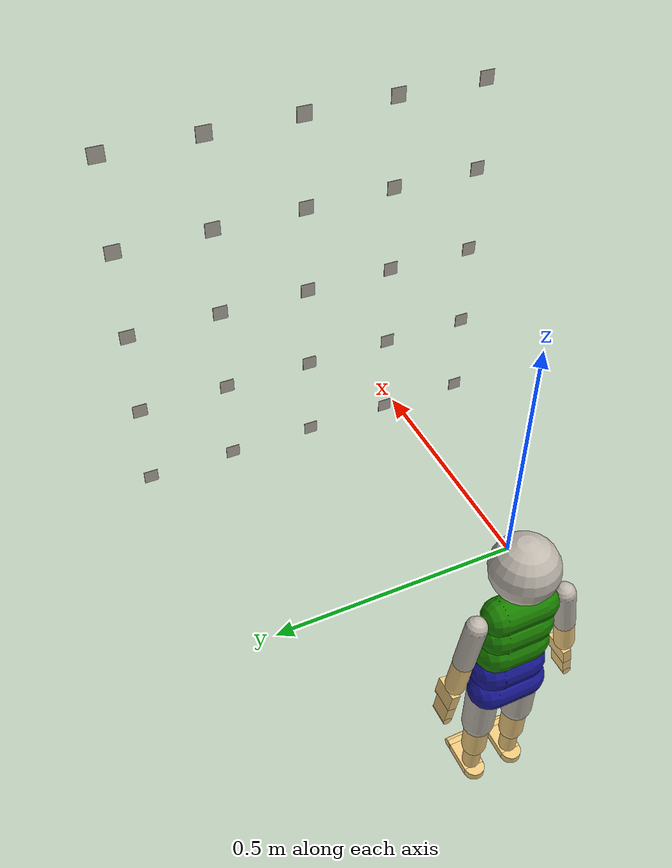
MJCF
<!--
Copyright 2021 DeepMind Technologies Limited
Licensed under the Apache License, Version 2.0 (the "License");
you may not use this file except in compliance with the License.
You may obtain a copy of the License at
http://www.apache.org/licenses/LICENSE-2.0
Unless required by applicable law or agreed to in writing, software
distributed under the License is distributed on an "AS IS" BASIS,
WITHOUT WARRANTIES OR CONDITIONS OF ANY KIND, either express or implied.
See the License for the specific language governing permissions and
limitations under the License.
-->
<mujoco model="MIMo">

    <compiler inertiafromgeom="true" angle="degree"/>

    <option gravity="0 0 0" timestep="0.005" iterations="50" tolerance="1e-10" solver="Newton" jacobian="dense" cone="elliptic" impratio="1.0"/>

    <size nconmax="1000" njmax="5000" nstack="10000000" nuser_cam="3"/>

    <visual>
        <map force="0.1" zfar="30" znear="0.005"/>
        <rgba haze="0.15 0.25 0.35 1"/>
        <quality shadowsize="0"/>
        <global offwidth="800" offheight="800"/>
    </visual>

    <!-- Import everything except the kinematic tree -->
	<include file="saccade_vergence_meta.xml"></include>

    <asset>
        <texture type="skybox" builtin="gradient" rgb1="0.3 0.5 0.7" rgb2="0 0 0" width="512" height="512"/>

        <!--background-->
        <texture name="background" type="2d" file="../../../data/background.png"/>
        <material name="background" texture="background"/>

        <!-- textures-->
        <texture name="texture0" type="cube" filefront="../../../data/texture0.png" rgb1="0 0 0"/>
        <texture name="texture1" type="cube" filefront="../../../data/texture1.png" rgb1="0 0 0"/>
        <texture name="texture2" type="cube" filefront="../../../data/texture2.png" rgb1="0 0 0"/>
        <texture name="texture3" type="cube" filefront="../../../data/texture3.png" rgb1="0 0 0"/>
        <texture name="texture4" type="cube" filefront="../../../data/texture4.png" rgb1="0 0 0"/>
        <texture name="texture5" type="cube" filefront="../../../data/texture5.png" rgb1="0 0 0"/>
        <texture name="texture6" type="cube" filefront="../../../data/texture6.png" rgb1="0 0 0"/>
        <texture name="texture7" type="cube" filefront="../../../data/texture7.png" rgb1="0 0 0"/>
        <texture name="texture8" type="cube" filefront="../../../data/texture8.png" rgb1="0 0 0"/>
        <texture name="texture9" type="cube" filefront="../../../data/texture9.png" rgb1="0 0 0"/>
        <texture name="texture10" type="cube" filefront="../../../data/texture10.png" rgb1="0 0 0"/>
        <texture name="texture11" type="cube" filefront="../../../data/texture11.png" rgb1="0 0 0"/>
        <texture name="texture12" type="cube" filefront="../../../data/texture12.png" rgb1="0 0 0"/>
        <texture name="texture13" type="cube" filefront="../../../data/texture13.png" rgb1="0 0 0"/>
        <texture name="texture14" type="cube" filefront="../../../data/texture14.png" rgb1="0 0 0"/>
        <texture name="texture15" type="cube" filefront="../../../data/texture15.png" rgb1="0 0 0"/>
        <texture name="texture16" type="cube" filefront="../../../data/texture16.png" rgb1="0 0 0"/>
        <texture name="texture17" type="cube" filefront="../../../data/texture17.png" rgb1="0 0 0"/>
        <texture name="texture18" type="cube" filefront="../../../data/texture18.png" rgb1="0 0 0"/>
        <texture name="texture19" type="cube" filefront="../../../data/texture19.png" rgb1="0 0 0"/>
        <texture name="texture20" type="cube" filefront="../../../data/texture20.png" rgb1="0 0 0"/>
        <texture name="texture21" type="cube" filefront="../../../data/texture21.png" rgb1="0 0 0"/>
        <texture name="texture22" type="cube" filefront="../../../data/texture22.png" rgb1="0 0 0"/>
        <texture name="texture23" type="cube" filefront="../../../data/texture23.png" rgb1="0 0 0"/>
        <texture name="texture24" type="cube" filefront="../../../data/texture24.png" rgb1="0 0 0"/>

        <material name="target03" texture="texture0"/>
        <material name="target12" texture="texture1"/>
        <material name="target13" texture="texture2"/>
        <material name="target14" texture="texture3"/>
        <material name="target21" texture="texture4"/>
        <material name="target22" texture="texture5"/>
        <material name="target23" texture="texture6"/>
        <material name="target24" texture="texture7"/>
        <material name="target25" texture="texture8"/>
        <material name="target30" texture="texture9"/>
        <material name="target31" texture="texture10"/>
        <material name="target32" texture="texture11"/>
        <material name="target33" texture="texture12"/>
        <material name="target34" texture="texture13"/>
        <material name="target35" texture="texture14"/>
        <material name="target36" texture="texture15"/>
        <material name="target41" texture="texture16"/>
        <material name="target42" texture="texture17"/>
        <material name="target43" texture="texture18"/>
        <material name="target44" texture="texture19"/>
        <material name="target45" texture="texture20"/>
        <material name="target52" texture="texture21"/>
        <material name="target53" texture="texture22"/>
        <material name="target54" texture="texture23"/>
        <material name="target63" texture="texture24"/>
    </asset>

    <equality>
        <weld body1="head"/>
        <weld body1="upper_body"/>
        <weld body1="lower_body"/>
        <weld body1="right_upper_arm"/>
        <weld body1="right_hand"/>
        <weld body1="left_upper_arm"/>
        <weld body1="left_hand"/>
        <weld body1="left_upper_leg"/>
        <weld body1="left_foot"/>
        <weld body1="right_upper_leg"/>
        <weld body1="right_foot"/>
    </equality>

    <worldbody>

        <light directional="false" diffuse=".4 .4 .4" specular="0 0 0" pos="0 0 10" dir="0 0 -1" castshadow="false"/>
        <light mode="targetbodycom" target="upper_body" directional="false" diffuse=".5 .5 .5" specular="0.3 0.3 0.3" pos="0 0 5.0" dir="0 0 -1"/>
        <light mode="targetbodycom" target="upper_body" directional="false" diffuse=".5 .5 .5" specular="0.3 0.3 0.3" pos="5.0 0 0.5" dir="-1 0 0"/>
        <light mode="targetbodycom" target="upper_body" directional="false" diffuse=".3 .3 .3" specular="0.3 0.3 0.3" pos="0 5 0.5" dir="0 -1 0"/>
        <light mode="targetbodycom" target="upper_body" directional="false" diffuse=".3 .3 .3" specular="0.3 0.3 0.3" pos="0 -5 0.5" dir="0 1 0"/>

        <!-- Camera behind MIMo as an outside observer of the scene -->
        <camera name="observer" mode="fixed" fovy="54" pos="0 0 0" euler="-90 -90 180"/>
        <camera name="observer_side" mode="fixed" fovy="40" pos="-0.5 0.5 0" euler="-90 -60 180"/>

        <!-- The location and orientation of the base model can be set using this body -->
		<body name="mimo_location" pos="-0.07 0 -0.369375" euler="0 0 0">      <!--MIMo positioned such that his eye cameras are at x,z=0-->
			<freejoint/>
			<include file="saccade_vergence_model.xml"></include> <!-- Import the actual model-->
		</body>

        <!-- Background -->

        <!-- Target textures -->

        <body name="target03" mocap="true" pos="1.0 -0.5 -0.5">
			<geom name="target03" type="box" material="target03" size="0.02 0.02 .001" pos="0 0 0" euler="90 -90 0"/>
		</body>

        <body name="target12" mocap="true" pos="1.0 -0.25 -0.5">
			<geom name="target12" type="box" material="target12" size="0.02 0.02 .001" pos="0 0 0" euler="90 -90 0"/>
		</body>

        <body name="target13" mocap="true" pos="1.0 0.0 -0.5">
			<geom name="target13" type="box" material="target13" size="0.02 0.02 .001" pos="0 0 0" euler="90 -90 0"/>
		</body>

        <body name="target14" mocap="true" pos="1.0 0.25 -0.5">
			<geom name="target14" type="box" material="target14" size="0.02 0.02 .001" pos="0 0 0" euler="90 -90 0"/>
		</body>

        <body name="target21" mocap="true" pos="1.0 0.5 -0.5">
			<geom name="target21" type="box" material="target21" size="0.02 0.02 .001" pos="0 0 0" euler="90 -90 0"/>
		</body>

        <body name="target22" mocap="true" pos="1.0 -0.5 -0.25">
			<geom name="target22" type="box" material="target22" size="0.02 0.02 .001" pos="0 0 0" euler="90 -90 0"/>
		</body>

        <body name="target23" mocap="true" pos="1.0 -0.25 -0.25">
			<geom name="target23" type="box" material="target23" size="0.02 0.02 .001" pos="0 0 0" euler="90 -90 0"/>
		</body>

        <body name="target24" mocap="true" pos="1.0 0.0 -0.25">
			<geom name="target24" type="box" material="target24" size="0.02 0.02 .001" pos="0 0 0" euler="90 -90 0"/>
		</body>

        <body name="target25" mocap="true" pos="1.0 0.25 -0.25">
			<geom name="target25" type="box" material="target25" size="0.02 0.02 .001" pos="0 0 0" euler="90 -90 0"/>
		</body>

        <body name="target30" mocap="true" pos="1.0 0.5 -0.25">
			<geom name="target30" type="box" material="target30" size="0.02 0.02 .001" pos="0 0 0" euler="90 -90 0"/>
		</body>

        <body name="target31" mocap="true" pos="1.0 -0.5 0.0">
			<geom name="target31" type="box" material="target31" size="0.02 0.02 .001" pos="0 0 0" euler="90 -90 0"/>
		</body>

        <body name="target32" mocap="true" pos="1.0 -0.25 0.0">
			<geom name="target32" type="box" material="target32" size="0.02 0.02 .001" pos="0 0 0" euler="90 -90 0"/>
		</body>

        <body name="target33" mocap="true" pos="1.0 0.0 0.0">
			<geom name="target33" type="box" material="target33" size="0.02 0.02 .001" pos="0 0 0" euler="90 -90 0"/>
		</body>

        <body name="target34" mocap="true" pos="1.0 0.25 0.0">
			<geom name="target34" type="box" material="target34" size="0.02 0.02 .001" pos="0 0 0" euler="90 -90 0"/>
		</body>

        <body name="target35" mocap="true" pos="1.0 0.5 0.0">
			<geom name="target35" type="box" material="target35" size="0.02 0.02 .001" pos="0 0 0" euler="90 -90 0"/>
		</body>

        <body name="target36" mocap="true" pos="1.0 -0.5 0.25">
			<geom name="target36" type="box" material="target36" size="0.02 0.02 .001" pos="0 0 0" euler="90 -90 0"/>
		</body>

        <body name="target41" mocap="true" pos="1.0 -0.25 0.25">
			<geom name="target41" type="box" material="target41" size="0.02 0.02 .001" pos="0 0 0" euler="90 -90 0"/>
		</body>

        <body name="target42" mocap="true" pos="1.0 0.0 0.25">
			<geom name="target42" type="box" material="target42" size="0.02 0.02 .001" pos="0 0 0" euler="90 -90 0"/>
		</body>

        <body name="target43" mocap="true" pos="1.0 0.25 0.25">
			<geom name="target43" type="box" material="target43" size="0.02 0.02 .001" pos="0 0 0" euler="90 -90 0"/>
		</body>

        <body name="target44" mocap="true" pos="1.0 0.5 0.25">
			<geom name="target44" type="box" material="target44" size="0.02 0.02 .001" pos="0 0 0" euler="90 -90 0"/>
		</body>

        <body name="target45" mocap="true" pos="1.0 -0.5 0.5">
			<geom name="target45" type="box" material="target45" size="0.02 0.02 .001" pos="0 0 0" euler="90 -90 0"/>
		</body>

        <body name="target52" mocap="true" pos="1.0 -0.25 0.5">
			<geom name="target52" type="box" material="target52" size="0.02 0.02 .001" pos="0 0 0" euler="90 -90 0"/>
		</body>

        <body name="target53" mocap="true" pos="1.0 0.0 0.5">
			<geom name="target53" type="box" material="target53" size="0.02 0.02 .001" pos="0 0 0" euler="90 -90 0"/>
		</body>

        <body name="target54" mocap="true" pos="1.0 0.25 0.5">
			<geom name="target54" type="box" material="target54" size="0.02 0.02 .001" pos="0 0 0" euler="90 -90 0"/>
		</body>

        <body name="target63" mocap="true" pos="1.0 0.5 0.5">
			<geom name="target63" type="box" material="target63" size="0.02 0.02 .001" pos="0 0 0" euler="90 -90 0"/>
		</body>

    </worldbody>
</mujoco>

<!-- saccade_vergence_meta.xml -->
<mujoco model="MIMo">

	<default>
		<default class="mimo">
        	<joint limited="true" damping="1" stiffness="1" armature="0.01" solimplimit="0.98 0.99 0.001 .5 1" solreflimit="0.02 1"/>
        	<geom condim="3" material="skin" density="985" friction="1 0.005 0.0002" solimp="0.95 0.99 0.001 0.5 1" solref="0.005 1"/>
        	<motor ctrlrange="-1 1" ctrllimited="true" forcelimited="true"/>
		</default>
    </default>

    <asset>

		<texture name="tex_head_default" type="cube" fileright="tex/head_front.png" fileleft="tex/head_back.png" fileup="tex/head_left.png" filedown="tex/head_right.png" filefront="tex/head_top.png" rgb1="0.95 .8 .5"/>
		<texture name="tex_head_happy" type="cube" fileright="tex/head_front_happy.png" fileleft="tex/head_back.png" fileup="tex/head_left.png" filedown="tex/head_right.png" filefront="tex/head_top.png" rgb1="0.95 .8 .5"/>
		<texture name="tex_head_sad" type="cube" fileright="tex/head_front_sad.png" fileleft="tex/head_back.png" fileup="tex/head_left.png" filedown="tex/head_right.png" filefront="tex/head_top.png" rgb1="0.95 .8 .5"/>
		<texture name="tex_head_surprised" type="cube" fileright="tex/head_front_surprised.png" fileleft="tex/head_back.png" fileup="tex/head_left.png" filedown="tex/head_right.png" filefront="tex/head_top.png" rgb1="0.95 .8 .5"/>
		<texture name="tex_head_angry" type="cube" fileright="tex/head_front_angry.png" fileleft="tex/head_back.png" fileup="tex/head_left.png" filedown="tex/head_right.png" filefront="tex/head_top.png" rgb1="0.95 .8 .5"/>
		<texture name="tex_head_disgusted" type="cube" fileright="tex/head_front_disgusted.png" fileleft="tex/head_back.png" fileup="tex/head_left.png" filedown="tex/head_right.png" filefront="tex/head_top.png" rgb1="0.95 .8 .5"/>
		<texture name="tex_head_scared" type="cube" fileright="tex/head_front_scared.png" fileleft="tex/head_back.png" fileup="tex/head_left.png" filedown="tex/head_right.png" filefront="tex/head_top.png" rgb1="0.95 .8 .5"/>
		<texture name="tex_top_sleeve" type="cube" fileright="tex/sleeve_right.png" fileleft="tex/sleeve_left.png" fileup="tex/sleeve_up.png" filedown="tex/sleeve_down.png" filefront="tex/sleeve_front.png" fileback="tex/sleeve_back.png" rgb1="0.95 .8 .5"/>
		<texture name="tex_pants_leg" type="cube" fileright="tex/leg_right.png" fileleft="tex/leg_left.png" fileup="tex/leg_up.png" filedown="tex/leg_down.png" filefront="tex/leg_front.png" fileback="tex/leg_back.png" rgb1="0.95 .8 .5"/>
		<texture name="tex_eye_left" type="cube" fileright="tex/eye_pupil_left.png" rgb1="1 1 1"/>
		<texture name="tex_eye_right" type="cube" fileright="tex/eye_pupil_right.png" rgb1="1 1 1"/>

		<material name="skin" rgba="0.95 0.8 0.5 1" specular=".15" shininess=".7"/>
		<material name="buttons" rgba=".05 .05 .05 1" specular=".9" shininess=".9"/>
		<material name="head" texture="tex_head_default" texuniform="true" specular=".0" shininess=".0"/>
		<material name="top_up" rgba=".1 .5 0.0 1" specular=".0" shininess=".0"/>
		<material name="top_middle" rgba=".1 .5 0.0 1" specular=".0" shininess=".0"/>
		<material name="top_down" rgba=".1 .5 0.0 1" specular=".0" shininess=".0"/>
		<material name="top_sleeve" texture="tex_top_sleeve" texuniform="true" specular=".0" shininess=".0"/>
		<material name="pants_up" rgba="0.1 0.1 0.6 1" specular=".0" shininess=".0"/>
		<material name="pants_down" rgba="0.1 0.1 0.6 1" specular=".0" shininess=".0"/>
		<material name="pants_leg" texture="tex_pants_leg" texuniform="true" specular=".0" shininess=".0"/>
		<material name="eye_left" texture="tex_eye_left" texuniform="true" specular=".0" shininess=".0"/>
		<material name="eye_right" texture="tex_eye_right" texuniform="true" specular=".0" shininess=".0"/>

    </asset>

	<!-- Internal contacts should not have friction to reduce "getting stuck" on ourselves-->
	<contact>
		<pair geom1="lb" geom2="ub1" condim="1"/>
	</contact>

	<tendon>
		<fixed class="mimo" name="hip_bend" limited="true" range="-.01 .01">
			<joint joint="robot:hip_bend1" coef="1"/>
			<joint joint="robot:hip_bend2" coef="-1"/>
		</fixed>
		<fixed class="mimo" name="hip_rotation" limited="true" range="-.01 .01">
			<joint joint="robot:hip_rot1" coef="1"/>
			<joint joint="robot:hip_rot2" coef="-1"/>
		</fixed>
		<fixed class="mimo" name="hip_lean" limited="true" range="-.01 .01">
			<joint joint="robot:hip_lean1" coef="1"/>
			<joint joint="robot:hip_lean2" coef="-.5"/>
		</fixed>
		<fixed class="mimo" name="head_limits1" limited="true" range="-2.1 2.1">
			<joint joint="robot:head_swivel" coef="1"/>
			<joint joint="robot:head_tilt_side" coef="1"/>
		</fixed>
		<fixed class="mimo" name="head_limits2" limited="true" range="-2.1 2.1">
			<joint joint="robot:head_tilt" coef="1"/>
			<joint joint="robot:head_tilt_side" coef="1"/>
		</fixed>
		<fixed class="mimo" name="head_limits3" limited="true" range="-2.1 2.1">
			<joint joint="robot:head_swivel" coef="1"/>
			<joint joint="robot:head_tilt" coef="1"/>
		</fixed>
		<fixed class="mimo" name="head_limits1_sym" limited="true" range="-2.1 2.1">
			<joint joint="robot:head_swivel" coef="1"/>
			<joint joint="robot:head_tilt_side" coef="-1"/>
		</fixed>
		<fixed class="mimo" name="head_limits2_sym" limited="true" range="-2.1 2.1">
			<joint joint="robot:head_tilt" coef="1"/>
			<joint joint="robot:head_tilt_side" coef="-1"/>
		</fixed>
		<fixed class="mimo" name="head_limits3_sym" limited="true" range="-2.1 2.1">
			<joint joint="robot:head_swivel" coef="1"/>
			<joint joint="robot:head_tilt" coef="-1"/>
		</fixed>
	</tendon>

	<sensor>
		<accelerometer name="vestibular_acc" site="vestibular"/>
		<gyro name="vestibular_gyro" site="vestibular"/>

		<torque name="proprio:neck" site="torque_neck"/>
		<torque name="proprio:left_eye" site="torque_left_eye"/>
		<torque name="proprio:right_eye" site="torque_right_eye"/>

		<torque name="proprio:trunk_upper" site="torque_ub"/>
		<torque name="proprio:trunk_lower" site="torque_lb"/>

		<torque name="proprio:right_shoulder" site="torque_right_shoulder"/>
		<torque name="proprio:right_elbow" site="torque_right_elbow"/>
		<torque name="proprio:right_wrist" site="torque_right_wrist"/>
		<torque name="proprio:right_fingers" site="torque_right_fingers"/>

		<torque name="proprio:left_shoulder" site="torque_left_shoulder"/>
		<torque name="proprio:left_elbow" site="torque_left_elbow"/>
		<torque name="proprio:left_wrist" site="torque_left_wrist"/>
		<torque name="proprio:left_fingers" site="torque_left_fingers"/>

		<torque name="proprio:right_hip" site="torque_right_hip"/>
		<torque name="proprio:right_knee" site="torque_right_knee"/>
		<torque name="proprio:right_ankle" site="torque_right_ankle"/>
		<torque name="proprio:right_toes" site="torque_right_toes"/>

		<torque name="proprio:left_hip" site="torque_left_hip"/>
		<torque name="proprio:left_knee" site="torque_left_knee"/>
		<torque name="proprio:left_ankle" site="torque_left_ankle"/>
		<torque name="proprio:left_toes" site="torque_left_toes"/>
	</sensor>

    <actuator>
		<!-- No actuators in the model: eyes moved manually -->
	</actuator>

</mujoco>

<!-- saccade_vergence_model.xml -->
<mujoco model="MIMo">

	<body childclass="mimo" name="hip" pos="0 0 0">
		<!-- Whole body height is 77.8 cm -->
		<geom name="lb" type="capsule" density="850" size=".048 .043" material="pants_down" pos="-.002 0 0.005" euler="90 0 0"/>
		<site name="lowerBody_center" type="sphere" size=".01 .01 .01" pos="0 0 0"/>
		<body name="lower_body" pos="0.002 0 0.076">
			<joint name="robot:hip_lean1" type="hinge" pos="0 0 -.05" axis="1 0 0" range="-14 14" stiffness="1.69" damping="0.38" frictionloss=".024"/>
			<joint name="robot:hip_rot1" type="hinge" pos="0 0 0" axis="0 0 1" range="-18 18" stiffness="1.45" damping="0.29" frictionloss=".018"/>
			<joint name="robot:hip_bend1" type="hinge" pos="0 0 -0.05" axis="0 1 0" range="-17 30.5" stiffness="2.20" damping="0.84" frictionloss="0.040"/>
			<site name="torque_lb" type="sphere" size="0.01" pos="0 0 0" group="4"/>
			<geom name="cb" type="capsule" size=".053 .035" density="900" material="pants_up" contype="0" pos="0.005 0 -.008" euler="90 0 0"/>

			<body name="upper_body" pos="-.002 0 0.091">
				<joint name="robot:hip_lean2" type="hinge" pos="0 0 -.05" axis="1 0 0" range="-27 27" stiffness="3.38" damping="0.77" frictionloss=".049"/>
				<joint name="robot:hip_rot2" type="hinge" pos="0 0 0" axis="0 0 1" range="-18 18" stiffness="1.45" damping="0.29" frictionloss=".018"/>
				<joint name="robot:hip_bend2" type="hinge" pos="0 0 -.05" axis="0 1 0" range="-17 30.5" stiffness="2.20" damping="0.84" frictionloss="0.040"/>
				<site name="torque_ub" type="sphere" size="0.01" pos="0 0 0" group="4"/>
				<geom name="ub1" type="capsule" size=".052 .035" density="900" material="top_down" pos="0.007 0 -.032" euler="90 0 0"/>
				<geom name="ub2" type="capsule" size=".048 .039" density="900" material="top_middle" pos="0.004 0 0.03" euler="90 0 0"/>
				<geom name="ub3" type="capsule" size=".041 .047" density="900" material="top_up" pos="0 0 0.09" euler="90 0 0"/>

				<body name="head" pos="0 0 .135">
					<geom name="head" type="sphere" material="head" size=".0735" pos="0.01 0 0.0735"/>
					<site name="vestibular" type="sphere" size="0.01" pos="0.01 0 0.0735" group="4"/>
					<site name="torque_neck" type="sphere" size="0.01" pos="0 0 0" group="4"/>
					<joint name="robot:head_swivel" type="hinge" pos="0 0 0" axis="0 0 1" range="-111 111" stiffness=".15" damping=".19" frictionloss=".012"/>
					<joint name="robot:head_tilt" type="hinge" pos="0 0 0.0123" axis="0 1 0" range="-70 81" stiffness=".29" damping=".33" frictionloss=".012"/>
					<joint name="robot:head_tilt_side" type="hinge" pos="0 0 0.0245" axis="1 0 0" range="-70 70" stiffness=".24" damping=".19" frictionloss=".012"/>
					<body name="left_eye" pos=".07 .0245 .067375">
						<site name="torque_left_eye" type="sphere" size="0.01" pos="0 0 0" group="4"/>
						<joint name="robot:left_eye_horizontal" type="hinge" pos="0 0 0" axis="0 0 1" range="-45 45" stiffness=".10" damping=".015" frictionloss=".001"/>
						<joint name="robot:left_eye_vertical" type="hinge" pos="0 0 0" axis="0 -1 0" range="-47 33" stiffness=".10" damping=".015" frictionloss=".001"/>
						<joint name="robot:left_eye_torsional" type="hinge" pos="0 0 0" axis="-1 0 0" range="-8 8" stiffness=".10" damping=".015" frictionloss=".001"/>
						<geom type="sphere" material="eye_left" size=".01125" pos="0 0 0"/>
						<camera name="eye_left_fine" mode="fixed" fovy="18" pos="0.01125 0 0" euler="90 -90 0"/>
						<camera name="eye_left_coarse" mode="fixed" fovy="54" pos="0.01125 0 0" euler="90 -90 0"/>
					</body>
					<body name="right_eye" pos=".07 -.0245 .067375">
						<site name="torque_right_eye" type="sphere" size="0.01" pos="0 0 0" group="4"/>
						<joint name="robot:right_eye_horizontal" type="hinge" pos="0 0 0" axis="0 0 -1" range="-45 45" stiffness=".10" damping=".015" frictionloss=".001"/>
						<joint name="robot:right_eye_vertical" type="hinge" pos="0 0 0" axis="0 -1 0" range="-47 33" stiffness=".10" damping=".015" frictionloss=".001"/>
						<joint name="robot:right_eye_torsional" type="hinge" pos="0 0 0" axis="1 0 0" range="-8 8" stiffness=".10" damping=".015" frictionloss=".001"/>
						<geom type="sphere" material="eye_right" size=".01125" pos="0 0 0"/>
						<camera name="eye_right_fine" mode="fixed" fovy="18" pos="0.01125 0 0" euler="90 -90 0"/>
						<camera name="eye_right_coarse" mode="fixed" fovy="54" pos="0.01125 0 0" euler="90 -90 0"/>
					</body>
				</body>

				<body name="right_upper_arm" pos="-.005 -0.105 .093" euler="170 0 0">
					<!-- Arm length is 31.36cm -->
					<joint name="robot:right_shoulder_horizontal" type="hinge" pos="0 -.024 0" axis="0 1 -4" range="-28 118" stiffness=".09" damping=".05" frictionloss=".0009"/>
					<joint name="robot:right_shoulder_ad_ab" type="hinge" pos="0 0 0" axis="-1 0 0" range="-84 183" stiffness=".11" damping=".10" frictionloss=".0014"/>
					<joint name="robot:right_shoulder_rotation" type="hinge" pos="0 0 0" axis="0 0 -1" range="-99 67" stiffness=".12" damping=".07" frictionloss=".0008"/>
					<site name="torque_right_shoulder" type="sphere" size="0.01" pos="0 0 0" group="4"/>
					<geom name="right_uarm1" type="capsule" material="top_sleeve" size="0.024 0.0536" pos="0 0 .0536" euler="0 0 0"/>
					<body name="right_lower_arm" pos="0 0 .1076" euler="0 0 0">
						<joint name="robot:right_elbow" type="hinge" pos="0 0 0" axis="0 -1 0" springref="-20" range="-146 5" stiffness=".13" damping=".11" frictionloss=".030"/>
						<site name="torque_right_elbow" type="sphere" size="0.01" pos="0 0 0" group="4"/>
						<geom name="right_larm" type="capsule" size=".023 0.037" pos="0 0 .037"/>
						<body name="right_hand" pos="0 -.007 .087" euler="0 0 0"> <!-- Hand length is 9.3, Palm length is 5.16 -->
							<joint name="robot:right_hand1" type="hinge" pos="0 0 0" axis="0 0 -1" springref="-20" range="-90 90" stiffness=".22" damping=".03" frictionloss=".007"/>
							<joint name="robot:right_hand2" type="hinge" pos="0 0 0" axis="-1 0 0" range="-92 86" stiffness=".33" damping=".11" frictionloss=".007"/>
							<joint name="robot:right_hand3" type="hinge" pos="0 0 0" axis="0 1 0" range="-53 48" stiffness=".38" damping=".11" frictionloss=".007"/>
							<site name="torque_right_wrist" type="sphere" size="0.01" pos="0 0 0" group="4"/>
							<geom type="box" size=".0281 .01 .0208" pos=".005 0 .0208"/>
							<geom type="cylinder" size=".01 .0278" pos=".005 0 .0416" euler="0 90 0"/>
							<body name="right_fingers" pos="0 0 .0416"> <!-- Finger length is 5.14 cm, 1 cm overlap between palm and fingers -->
								<joint name="robot:right_fingers" type="hinge" pos="0 0 0" axis="-1 0 0" springref="-40" range="-160 8" stiffness=".017" damping=".018" frictionloss=".0023"/>
								<site name="torque_right_fingers" type="sphere" size="0.01" pos="0 0 0" group="4"/>
								<geom type="box" size=".0229 .01 .0207" pos="0 0 .0207" friction="5 0.02 0.01"/>
								<geom type="cylinder" size=".01 .023" pos="0 0 .0414" euler="0 90 0" friction="5 0.02 0.01"/>
							</body>
						</body>
					</body>
				</body>

				<body name="left_upper_arm" pos="-.005 0.105 .093" euler="-170 0 0">
					<!-- Arm length is 31.36cm -->
					<joint name="robot:left_shoulder_horizontal" type="hinge" pos="0 .024 0" axis="0 1 4" range="-28 118" stiffness=".09" damping=".05" frictionloss=".0009"/>
					<joint name="robot:left_shoulder_ad_ab" type="hinge" pos="0 0 0" axis="1 0 0" range="-84 183" stiffness=".11" damping=".10" frictionloss=".0014"/>
					<joint name="robot:left_shoulder_rotation" type="hinge" pos="0 0 0" axis="0 0 1" range="-99 67" stiffness=".12" damping=".07" frictionloss=".0008"/>
					<site name="torque_left_shoulder" type="sphere" size="0.01" pos="0 0 0" group="4"/>
					<geom name="left_uarm1" type="capsule" material="top_sleeve" size="0.024 0.0536" pos="0 0 .0536" euler="0 0 0"/>
					<body name="left_lower_arm" pos="0 0 .1076" euler="0 0 0">
						<joint name="robot:left_elbow" type="hinge" pos="0 0 0" axis="0 -1 0" springref="-20" range="-146 5" stiffness=".13" damping=".11" frictionloss=".030"/>
						<site name="torque_left_elbow" type="sphere" size="0.01" pos="0 0 0" group="4"/>
						<geom name="left_larm" type="capsule" size=".023 0.037" pos="0 0 .037"/>
						<body name="left_hand" pos="0 -.007 .087" euler="0 0 0"> <!-- Hand length is 9.3, Palm length is 5.16 -->
							<joint name="robot:left_hand1" type="hinge" pos="0 0 0" axis="0 0 1" springref="-20" range="-90 90" stiffness=".22" damping=".03" frictionloss=".007"/>
							<joint name="robot:left_hand2" type="hinge" pos="0 0 0" axis="1 0 0" range="-92 86" stiffness=".33" damping=".11" frictionloss=".007"/>
							<joint name="robot:left_hand3" type="hinge" pos="0 0 0" axis="0 1 0" range="-53 48" stiffness=".38" damping=".11" frictionloss=".007"/>
							<site name="torque_left_wrist" type="sphere" size="0.01" pos="0 0 0" group="4"/>
							<geom type="box" size=".0281 .01 .0208" pos=".005 0 .0208"/>
							<geom type="cylinder" size=".01 .0278" pos=".005 0 .0416" euler="0 90 0"/>
							<body name="left_fingers" pos="0 0 .0416"> <!-- Finger length is 5.14 cm, 1 cm overlap between palm and fingers -->
								<joint name="robot:left_fingers" type="hinge" pos="0 0 0" axis="1 0 0" springref="-40" range="-160 8" stiffness=".017" damping=".018" frictionloss=".0023"/>
								<site name="torque_left_fingers" type="sphere" size="0.01" pos="0 0 0" group="4"/>
								<geom type="box" size=".0229 .01 .0207" pos="0 0 .0207" friction="5 0.02 0.01"/>
								<geom type="cylinder" size=".01 .023" pos="0 0 .0414" euler="0 90 0" friction="5 0.02 0.01"/>
							</body>
						</body>
					</body>
				</body>
			</body>
		</body>

		<body name="right_upper_leg" pos="0.005 -.051 -.007">
			<!-- leg length is 32.9 cm -->
			<joint name="robot:right_hip1" type="hinge" pos="0 0 0" axis="0 1 0" springref="-10" range="-133 20" stiffness="1.72" damping="1.27" frictionloss=".08"/>
			<joint name="robot:right_hip2" type="hinge" pos="0 0 0" axis="1 0 0" range="-51 17" stiffness="3.51" damping="1.99" frictionloss=".062"/>
			<joint name="robot:right_hip3" type="hinge" pos="0 0 0" axis="0 0 -1" range="-32 41" stiffness="2.16" damping="0.75" frictionloss=".027"/>
			<site name="torque_right_hip" type="sphere" size="0.01" pos="0 0 0" group="4"/>
			<geom type="capsule" material="pants_leg" contype="2" conaffinity="3" size=".037 .0625" pos="0 0 -.0645" euler="0 0 0"/>
			<body name="right_lower_leg" pos="0 0 -.135">
				<joint name="robot:right_knee" type="hinge" pos="0 0 0" axis="0 -1 0" springref="-30" range="-145 4" stiffness="1.63" damping="0.53" frictionloss=".065"/>
				<site name="torque_right_knee" type="sphere" size="0.01" pos="0 0 0" group="4"/>
				<geom type="capsule" size=".029 .044" pos="0 0 -.044" euler="0 0 0"/>
				<geom type="capsule" size=".021 .028" pos="0 0 -.134" euler="0 0 0"/>
				<body name="right_foot" pos="0 0 -.177">
					<joint name="robot:right_foot1" type="hinge" pos="0 0 .015" axis="0 -1 0" springref="-10" range="-63 32" stiffness="1.29" damping="0.6" frictionloss=".019"/>
					<joint name="robot:right_foot2" type="hinge" pos="0 0 .015" axis="1 0 0" range="-33 31" stiffness="0.96" damping="0.37" frictionloss=".011"/>
					<joint name="robot:right_foot3" type="hinge" pos="0 0 .015" axis="0 0 1" range="-20 30" stiffness="1.15" damping="0.38" frictionloss=".012"/>
					<site name="torque_right_ankle" type="sphere" size="0.01" pos="0 0 0" group="4"/>
					<geom type="cylinder" size=".0249 .0099" pos="-0.016 0 0" euler="0 0 0"/>
					<geom type="box" size=".035  .025 .01" pos="0.019 0 0" euler="0 0 0" friction="2 0.02 0.01"/>
					<geom type="cylinder" size=".0099 .0248" pos=".054 0 0" euler="90 0 0" friction="2 0.02 0.01"/>
					<body name="right_toes" pos=".054 0 0">
						<joint name="robot:right_toes" type="hinge" pos="0 0 0" axis="0 -1 0" range="-30 80" frictionloss=".02" armature=".01" stiffness="3"/>
						<site name="torque_right_toes" type="sphere" size="0.01" pos="0 0 0" group="4"/>
						<geom type="box" size=".007 .0249 .0099" pos=".007 0 0" euler="0 0 0" friction="2 0.02 0.01"/>
						<geom type="cylinder" size=".01 .025" pos=".014 0 0" euler="90 0 0" friction="2 0.02 0.01"/>
					</body>
				</body>
			</body>
		</body>

		<body name="left_upper_leg" pos="0.005 .051 -.007">
			<!-- leg length is 32.9 cm -->
			<joint name="robot:left_hip1" type="hinge" pos="0 0 0" axis="0 1 0" springref="-10" range="-133 20" stiffness="1.72" damping="1.27" frictionloss=".08"/>
			<joint name="robot:left_hip2" type="hinge" pos="0 0 0" axis="-1 0 0" range="-51 17" stiffness="3.51" damping="1.99" frictionloss=".062"/>
			<joint name="robot:left_hip3" type="hinge" pos="0 0 0" axis="0 0 1" range="-32 41" stiffness="2.16" damping="0.75" frictionloss=".027"/>
			<site name="torque_left_hip" type="sphere" size="0.01" pos="0 0 0" group="4"/>
			<geom type="capsule" material="pants_leg" contype="2" conaffinity="3" size=".037 .0625" pos="0 0 -.0645" euler="0 0 0"/>
			<body name="left_lower_leg" pos="0 0 -.135">
				<joint name="robot:left_knee" type="hinge" pos="0 0 0" axis="0 -1 0" springref="-30" range="-145 4" stiffness="1.63" damping="0.53" frictionloss=".065"/>
				<site name="torque_left_knee" type="sphere" size="0.01" pos="0 0 0" group="4"/>
				<geom type="capsule" size=".029 .044" pos="0 0 -.044" euler="0 0 0"/>
				<geom type="capsule" size=".021 .028" pos="0 0 -.134" euler="0 0 0"/>
				<body name="left_foot" pos="0 0 -.177">
					<joint name="robot:left_foot1" type="hinge" pos="0 0 .015" axis="0 -1 0" springref="-10" range="-63 32" stiffness="1.29" damping="0.6" frictionloss=".019"/>
					<joint name="robot:left_foot2" type="hinge" pos="0 0 .015" axis="-1 0 0" range="-33 31" stiffness="0.96" damping="0.37" frictionloss=".011"/>
					<joint name="robot:left_foot3" type="hinge" pos="0 0 .015" axis="0 0 -1" range="-20 30" stiffness="1.15" damping="0.38" frictionloss=".012"/>
					<site name="torque_left_ankle" type="sphere" size="0.01" pos="0 0 0" group="4"/>
					<geom type="cylinder" size=".0249 .0099" pos="-0.016 0 0" euler="0 0 0"/>
					<geom type="box" size=".035  .025 .01" pos="0.019 0 0" euler="0 0 0" friction="2 0.02 0.01"/>
					<geom type="cylinder" size=".0099 .0248" pos=".054 0 0" euler="90 0 0" friction="2 0.02 0.01"/>
					<body name="left_toes" pos=".054 0 0">
						<joint name="robot:left_toes" type="hinge" pos="0 0 0" axis="0 -1 0" range="-30 80" frictionloss=".02" armature=".01" stiffness="3"/>
						<site name="torque_left_toes" type="sphere" size="0.01" pos="0 0 0" group="4"/>
						<geom type="box" size=".007 .0249 .0099" pos=".007 0 0" euler="0 0 0" friction="2 0.02 0.01"/>
						<geom type="cylinder" size=".01 .025" pos=".014 0 0" euler="90 0 0" friction="2 0.02 0.01"/>
					</body>
				</body>
			</body>
		</body>

	</body>

</mujoco>
